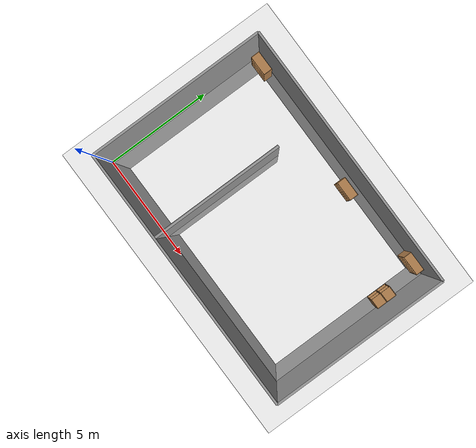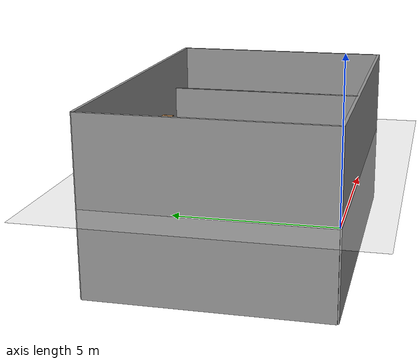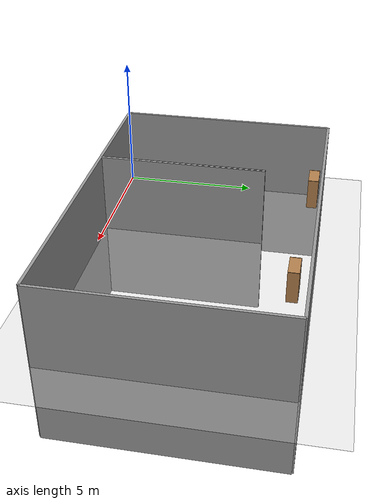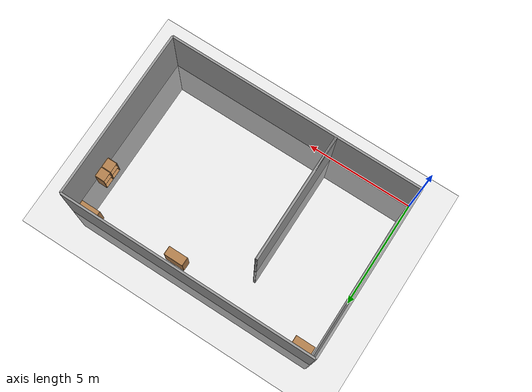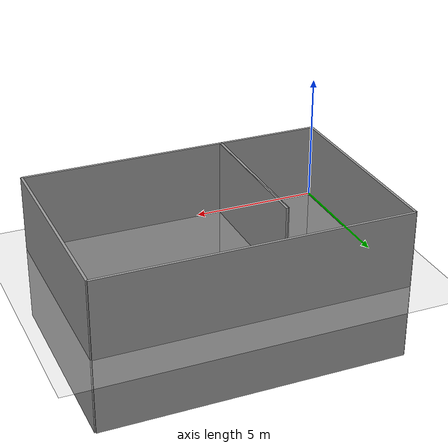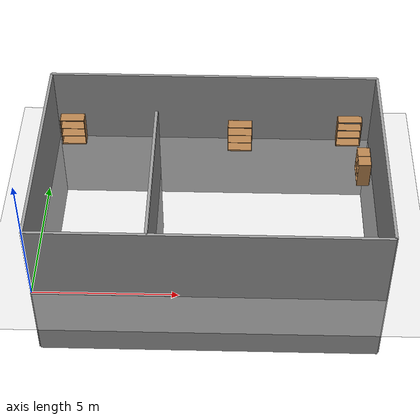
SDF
<sdf version="1.4">
 <world name="default">
  <light name="sun" type="directional">
   <pose>0 0 10 0 -0 0</pose>
   <diffuse>1 1 1 1</diffuse>
   <specular>0.2 0.2 0.2 1</specular>
   <attenuation>
    <range>1000</range>
    <constant>0.9</constant>
    <linear>0.01</linear>
    <quadratic>0.001</quadratic>
   </attenuation>
   <direction>0 0 -0.9</direction>
  </light>
  <model name="ground_plane">
   <static>1</static>
   <link name="link">
    <collision name="collision">
     <geometry><plane><normal>0 0 1</normal><size>100 100</size></plane></geometry>
     <surface><friction><ode><mu>100</mu><mu2>50</mu2></ode></friction></surface>
    </collision>
    <visual name="visual">
     <cast_shadows>0</cast_shadows>
     <geometry><plane><normal>0 0 1</normal><size>100 100</size></plane></geometry>
     <material>
      <script><uri>file://media/materials/scripts/gazebo.material</uri><name>Gazebo/Grey</name></script>
     </material>
    </visual>
    <velocity_decay><linear>0</linear><angular>0</angular></velocity_decay>
   </link>
  </model>
  <physics type="ode">
   <max_step_size>0.001</max_step_size>
   <real_time_factor>1</real_time_factor>
   <real_time_update_rate>1000</real_time_update_rate>
   <gravity>0 0 -9.8</gravity>
  </physics>
  <scene><ambient>0.8 0.8 0.8 1</ambient><background>0.7 0.7 0.7 1</background><shadows>1</shadows></scene>
  <spherical_coordinates>
   <surface_model>EARTH_WGS84</surface_model>
   <latitude_deg>0</latitude_deg>
   <longitude_deg>0</longitude_deg>
   <elevation>0</elevation>
   <heading_deg>0</heading_deg>
  </spherical_coordinates>
  <model name="grey_wall">
   <static>1</static>
   <link name="link">
    <pose>0 4 0 0 -0 1.5708</pose>
    <collision name="collision"><geometry><box><size>8 0.1 6</size></box></geometry></collision>
    <visual name="visual">
     <cast_shadows>0</cast_shadows>
     <geometry><box><size>8 0.1 6</size></box></geometry>
     <material>
      <script>
       <uri>model://grey_wall/materials/scripts</uri>
       <uri>model://grey_wall/materials/textures</uri>
       <name>vrc/grey_wall_design</name>
      </script>
     </material>
    </visual>
    <velocity_decay><linear>0</linear><angular>0</angular></velocity_decay>
   </link>
  </model>
  <model name="grey_wall_0">
   <static>1</static>
   <link name="link">
    <pose>12 4 0 0 -0 1.5708</pose>
    <collision name="collision"><geometry><box><size>8 0.1 6</size></box></geometry></collision>
    <visual name="visual">
     <cast_shadows>0</cast_shadows>
     <geometry><box><size>8 0.1 6</size></box></geometry>
     <material>
      <script>
       <uri>model://grey_wall/materials/scripts</uri>
       <uri>model://grey_wall/materials/textures</uri>
       <name>vrc/grey_wall_square</name>
      </script>
     </material>
    </visual>
    <velocity_decay><linear>0</linear><angular>0</angular></velocity_decay>
   </link>
  </model>
  <model name="grey_wall_1">
   <static>1</static>
   <link name="link">
    <pose>6 0 0 0 -0 0</pose>
    <collision name="collision"><geometry><box><size>12 0.1 6</size></box></geometry></collision>
    <visual name="visual">
     <cast_shadows>0</cast_shadows>
     <geometry><box><size>12 0.1 6</size></box></geometry>
     <material>
      <script>
       <uri>model://grey_wall/materials/scripts</uri>
       <uri>model://grey_wall/materials/textures</uri>
       <name>vrc/grey_wall_stone</name>
      </script>
     </material>
    </visual>
    <velocity_decay><linear>0</linear><angular>0</angular></velocity_decay>
   </link>
  </model>
  <model name="grey_wall_2">
   <static>1</static>
   <link name="link">
    <pose>6 8 0 0 -0 0</pose>
    <collision name="collision"><geometry><box><size>12 0.1 6</size></box></geometry></collision>
    <visual name="visual">
     <cast_shadows>0</cast_shadows>
     <geometry><box><size>12 0.1 6</size></box></geometry>
     <material>
      <script>
       <uri>model://grey_wall/materials/scripts</uri>
       <uri>model://grey_wall/materials/textures</uri>
       <name>vrc/grey_wall_triangle</name>
      </script>
     </material>
    </visual>
    <velocity_decay><linear>0</linear><angular>0</angular></velocity_decay>
   </link>
  </model>
  <model name="grey_wall_3">
   <static>1</static>
   <link name="link">
    <pose>4.01 3 0 0 -0 1.5708</pose>
    <collision name="collision"><geometry><box><size>6 0.1 6</size></box></geometry></collision>
    <visual name="visual">
     <cast_shadows>0</cast_shadows>
     <geometry><box><size>6 0.1 6</size></box></geometry>
     <material>
      <script>
       <uri>model://grey_wall/materials/scripts</uri>
       <uri>model://grey_wall/materials/textures</uri>
       <name>vrc/grey_wall_triangle</name>
      </script>
     </material>
    </visual>
    <velocity_decay><linear>0</linear><angular>0</angular></velocity_decay>
   </link>
  </model>
  <model name="grey_wall_4">
   <static>1</static>
   <link name="link">
    <pose>3.99 3 0 0 -0 1.5708</pose>
    <collision name="collision"><geometry><box><size>6 0.1 6</size></box></geometry></collision>
    <visual name="visual">
     <cast_shadows>0</cast_shadows>
     <geometry><box><size>6 0.1 6</size></box></geometry>
     <material>
      <script>
       <uri>model://grey_wall/materials/scripts</uri>
       <uri>model://grey_wall/materials/textures</uri>
       <name>vrc/grey_wall_tile</name>
      </script>
     </material>
    </visual>
    <velocity_decay><linear>0</linear><angular>0</angular></velocity_decay>
   </link>
  </model>
  <model name="bookshelf">
   <static>1</static>
   <link name="link">
    <inertial><mass>1</mass></inertial>
    <collision name="back">
     <pose>0 0.005 0.6 0 -0 0</pose>
     <geometry><box><size>0.9 0.01 1.2</size></box></geometry>
    </collision>
    <visual name="visual1">
     <pose>0 0.005 0.6 0 -0 0</pose>
     <geometry><box><size>0.9 0.01 1.2</size></box></geometry>
     <material>
      <script><uri>file://media/materials/scripts/gazebo.material</uri><name>Gazebo/Wood</name></script>
     </material>
    </visual>
    <collision name="left_side">
     <pose>0.45 -0.195 0.6 0 -0 0</pose>
     <geometry><box><size>0.02 0.4 1.2</size></box></geometry>
    </collision>
    <visual name="visual2">
     <pose>0.45 -0.195 0.6 0 -0 0</pose>
     <geometry><box><size>0.02 0.4 1.2</size></box></geometry>
     <material>
      <script><uri>file://media/materials/scripts/gazebo.material</uri><name>Gazebo/Wood</name></script>
     </material>
    </visual>
    <collision name="right_side">
     <pose>-0.45 -0.195 0.6 0 -0 0</pose>
     <geometry><box><size>0.02 0.4 1.2</size></box></geometry>
    </collision>
    <visual name="visual3">
     <pose>-0.45 -0.195 0.6 0 -0 0</pose>
     <geometry><box><size>0.02 0.4 1.2</size></box></geometry>
     <material>
      <script><uri>file://media/materials/scripts/gazebo.material</uri><name>Gazebo/Wood</name></script>
     </material>
    </visual>
    <collision name="bottom">
     <pose>0 -0.195 0.03 0 -0 0</pose>
     <geometry><box><size>0.88 0.4 0.06</size></box></geometry>
    </collision>
    <visual name="visual4">
     <pose>0 -0.195 0.03 0 -0 0</pose>
     <geometry><box><size>0.88 0.4 0.06</size></box></geometry>
     <material>
      <script><uri>file://media/materials/scripts/gazebo.material</uri><name>Gazebo/Wood</name></script>
     </material>
    </visual>
    <collision name="top">
     <pose>0 -0.195 1.19 0 -0 0</pose>
     <geometry><box><size>0.88 0.4 0.02</size></box></geometry>
    </collision>
    <visual name="visual5">
     <pose>0 -0.195 1.19 0 -0 0</pose>
     <geometry><box><size>0.88 0.4 0.02</size></box></geometry>
     <material>
      <script><uri>file://media/materials/scripts/gazebo.material</uri><name>Gazebo/Wood</name></script>
     </material>
    </visual>
    <collision name="low_shelf">
     <pose>0 -0.195 0.43 0 -0 0</pose>
     <geometry><box><size>0.88 0.4 0.02</size></box></geometry>
    </collision>
    <visual name="visual6">
     <pose>0 -0.195 0.43 0 -0 0</pose>
     <geometry><box><size>0.88 0.4 0.02</size></box></geometry>
     <material>
      <script><uri>file://media/materials/scripts/gazebo.material</uri><name>Gazebo/Wood</name></script>
     </material>
    </visual>
    <collision name="high_shelf">
     <pose>0 -0.195 0.8 0 -0 0</pose>
     <geometry><box><size>0.88 0.4 0.02</size></box></geometry>
    </collision>
    <visual name="visual7">
     <pose>0 -0.195 0.8 0 -0 0</pose>
     <geometry><box><size>0.88 0.4 0.02</size></box></geometry>
     <material>
      <script><uri>file://media/materials/scripts/gazebo.material</uri><name>Gazebo/Wood</name></script>
     </material>
    </visual>
    <velocity_decay><linear>0</linear><angular>0</angular></velocity_decay>
   </link>
   <pose>0.651167 7.83521 0 0 -0 0</pose>
  </model>
  <model name="bookshelf_0">
   <static>1</static>
   <link name="link">
    <inertial><mass>1</mass></inertial>
    <collision name="back">
     <pose>0 0.005 0.6 0 -0 0</pose>
     <geometry><box><size>0.9 0.01 1.2</size></box></geometry>
    </collision>
    <visual name="visual1">
     <pose>0 0.005 0.6 0 -0 0</pose>
     <geometry><box><size>0.9 0.01 1.2</size></box></geometry>
     <material>
      <script><uri>file://media/materials/scripts/gazebo.material</uri><name>Gazebo/Wood</name></script>
     </material>
    </visual>
    <collision name="left_side">
     <pose>0.45 -0.195 0.6 0 -0 0</pose>
     <geometry><box><size>0.02 0.4 1.2</size></box></geometry>
    </collision>
    <visual name="visual2">
     <pose>0.45 -0.195 0.6 0 -0 0</pose>
     <geometry><box><size>0.02 0.4 1.2</size></box></geometry>
     <material>
      <script><uri>file://media/materials/scripts/gazebo.material</uri><name>Gazebo/Wood</name></script>
     </material>
    </visual>
    <collision name="right_side">
     <pose>-0.45 -0.195 0.6 0 -0 0</pose>
     <geometry><box><size>0.02 0.4 1.2</size></box></geometry>
    </collision>
    <visual name="visual3">
     <pose>-0.45 -0.195 0.6 0 -0 0</pose>
     <geometry><box><size>0.02 0.4 1.2</size></box></geometry>
     <material>
      <script><uri>file://media/materials/scripts/gazebo.material</uri><name>Gazebo/Wood</name></script>
     </material>
    </visual>
    <collision name="bottom">
     <pose>0 -0.195 0.03 0 -0 0</pose>
     <geometry><box><size>0.88 0.4 0.06</size></box></geometry>
    </collision>
    <visual name="visual4">
     <pose>0 -0.195 0.03 0 -0 0</pose>
     <geometry><box><size>0.88 0.4 0.06</size></box></geometry>
     <material>
      <script><uri>file://media/materials/scripts/gazebo.material</uri><name>Gazebo/Wood</name></script>
     </material>
    </visual>
    <collision name="top">
     <pose>0 -0.195 1.19 0 -0 0</pose>
     <geometry><box><size>0.88 0.4 0.02</size></box></geometry>
    </collision>
    <visual name="visual5">
     <pose>0 -0.195 1.19 0 -0 0</pose>
     <geometry><box><size>0.88 0.4 0.02</size></box></geometry>
     <material>
      <script><uri>file://media/materials/scripts/gazebo.material</uri><name>Gazebo/Wood</name></script>
     </material>
    </visual>
    <collision name="low_shelf">
     <pose>0 -0.195 0.43 0 -0 0</pose>
     <geometry><box><size>0.88 0.4 0.02</size></box></geometry>
    </collision>
    <visual name="visual6">
     <pose>0 -0.195 0.43 0 -0 0</pose>
     <geometry><box><size>0.88 0.4 0.02</size></box></geometry>
     <material>
      <script><uri>file://media/materials/scripts/gazebo.material</uri><name>Gazebo/Wood</name></script>
     </material>
    </visual>
    <collision name="high_shelf">
     <pose>0 -0.195 0.8 0 -0 0</pose>
     <geometry><box><size>0.88 0.4 0.02</size></box></geometry>
    </collision>
    <visual name="visual7">
     <pose>0 -0.195 0.8 0 -0 0</pose>
     <geometry><box><size>0.88 0.4 0.02</size></box></geometry>
     <material>
      <script><uri>file://media/materials/scripts/gazebo.material</uri><name>Gazebo/Wood</name></script>
     </material>
    </visual>
    <velocity_decay><linear>0</linear><angular>0</angular></velocity_decay>
   </link>
   <pose>11.1462 7.97499 0 0 -0 0</pose>
  </model>
  <model name="cabinet">
   <static>1</static>
   <link name="cabinet_bottom_plate">
    <inertial>
     <pose>0 0 -1 0 -0 0</pose>
     <inertia><ixx>2.05</ixx><ixy>0</ixy><ixz>0</ixz><iyy>2.05</iyy><iyz>0</iyz><izz>2.05</izz></inertia>
     <mass>25</mass>
    </inertial>
    <collision name="cabinet_bottom_plate_geom">
     <pose>0 0 0.01 0 -0 0</pose>
     <geometry><box><size>0.45 0.45 0.02</size></box></geometry>
    </collision>
    <visual name="cabinet_bottom_plate_geom_visual">
     <pose>0 0 0.01 0 -0 0</pose>
     <geometry><box><size>0.45 0.45 0.02</size></box></geometry>
     <material>
      <script><uri>file://media/materials/scripts/gazebo.material</uri><name>Gazebo/Wood</name></script>
     </material>
    </visual>
    <collision name="cabinet_bottom_plate_geom_cabinet_back_plate">
     <pose>0.235 0 0.51 0 -0 0</pose>
     <geometry><box><size>0.02 0.45 1.02</size></box></geometry>
    </collision>
    <visual name="cabinet_bottom_plate_geom_cabinet_back_plate_visual">
     <pose>0.235 0 0.51 0 -0 0</pose>
     <geometry><box><size>0.02 0.45 1.02</size></box></geometry>
     <material>
      <script><uri>file://media/materials/scripts/gazebo.material</uri><name>Gazebo/Wood</name></script>
     </material>
    </visual>
    <collision name="cabinet_bottom_plate_geom_cabinet_left_plate">
     <pose>0 0.235 0.51 0 -0 0</pose>
     <geometry><box><size>0.45 0.02 1.02</size></box></geometry>
    </collision>
    <visual name="cabinet_bottom_plate_geom_cabinet_left_plate_visual">
     <pose>0 0.235 0.51 0 -0 0</pose>
     <geometry><box><size>0.45 0.02 1.02</size></box></geometry>
     <material>
      <script><uri>file://media/materials/scripts/gazebo.material</uri><name>Gazebo/Wood</name></script>
     </material>
    </visual>
    <collision name="cabinet_bottom_plate_geom_cabinet_middle_plate">
     <pose>0 0 0.51 0 -0 0</pose>
     <geometry><box><size>0.45 0.45 0.02</size></box></geometry>
    </collision>
    <visual name="cabinet_bottom_plate_geom_cabinet_middle_plate_visual">
     <pose>0 0 0.51 0 -0 0</pose>
     <geometry><box><size>0.45 0.45 0.02</size></box></geometry>
     <material>
      <script><uri>file://media/materials/scripts/gazebo.material</uri><name>Gazebo/Wood</name></script>
     </material>
    </visual>
    <collision name="cabinet_bottom_plate_geom_cabinet_right_plate">
     <pose>0 -0.235 0.51 0 -0 0</pose>
     <geometry><box><size>0.45 0.02 1.02</size></box></geometry>
    </collision>
    <visual name="cabinet_bottom_plate_geom_cabinet_right_plate_visual">
     <pose>0 -0.235 0.51 0 -0 0</pose>
     <geometry><box><size>0.45 0.02 1.02</size></box></geometry>
     <material>
      <script><uri>file://media/materials/scripts/gazebo.material</uri><name>Gazebo/Wood</name></script>
     </material>
    </visual>
    <collision name="cabinet_bottom_plate_geom_cabinet_top_plate">
     <pose>0 0 1.01 0 -0 0</pose>
     <geometry><box><size>0.45 0.45 0.02</size></box></geometry>
    </collision>
    <visual name="cabinet_bottom_plate_geom_cabinet_top_plate_visual">
     <pose>0 0 1.01 0 -0 0</pose>
     <geometry><box><size>0.45 0.45 0.02</size></box></geometry>
     <material>
      <script><uri>file://media/materials/scripts/gazebo.material</uri><name>Gazebo/Wood</name></script>
     </material>
    </visual>
    <velocity_decay><linear>0</linear><angular>0</angular></velocity_decay>
   </link>
   <pose>11.5733 6.16687 0 0 -0 0</pose>
  </model>
  <model name="cabinet_0">
   <static>1</static>
   <link name="cabinet_bottom_plate">
    <inertial>
     <pose>0 0 -1 0 -0 0</pose>
     <inertia><ixx>2.05</ixx><ixy>0</ixy><ixz>0</ixz><iyy>2.05</iyy><iyz>0</iyz><izz>2.05</izz></inertia>
     <mass>25</mass>
    </inertial>
    <collision name="cabinet_bottom_plate_geom">
     <pose>0 0 0.01 0 -0 0</pose>
     <geometry><box><size>0.45 0.45 0.02</size></box></geometry>
    </collision>
    <visual name="cabinet_bottom_plate_geom_visual">
     <pose>0 0 0.01 0 -0 0</pose>
     <geometry><box><size>0.45 0.45 0.02</size></box></geometry>
     <material>
      <script><uri>file://media/materials/scripts/gazebo.material</uri><name>Gazebo/Wood</name></script>
     </material>
    </visual>
    <collision name="cabinet_bottom_plate_geom_cabinet_back_plate">
     <pose>0.235 0 0.51 0 -0 0</pose>
     <geometry><box><size>0.02 0.45 1.02</size></box></geometry>
    </collision>
    <visual name="cabinet_bottom_plate_geom_cabinet_back_plate_visual">
     <pose>0.235 0 0.51 0 -0 0</pose>
     <geometry><box><size>0.02 0.45 1.02</size></box></geometry>
     <material>
      <script><uri>file://media/materials/scripts/gazebo.material</uri><name>Gazebo/Wood</name></script>
     </material>
    </visual>
    <collision name="cabinet_bottom_plate_geom_cabinet_left_plate">
     <pose>0 0.235 0.51 0 -0 0</pose>
     <geometry><box><size>0.45 0.02 1.02</size></box></geometry>
    </collision>
    <visual name="cabinet_bottom_plate_geom_cabinet_left_plate_visual">
     <pose>0 0.235 0.51 0 -0 0</pose>
     <geometry><box><size>0.45 0.02 1.02</size></box></geometry>
     <material>
      <script><uri>file://media/materials/scripts/gazebo.material</uri><name>Gazebo/Wood</name></script>
     </material>
    </visual>
    <collision name="cabinet_bottom_plate_geom_cabinet_middle_plate">
     <pose>0 0 0.51 0 -0 0</pose>
     <geometry><box><size>0.45 0.45 0.02</size></box></geometry>
    </collision>
    <visual name="cabinet_bottom_plate_geom_cabinet_middle_plate_visual">
     <pose>0 0 0.51 0 -0 0</pose>
     <geometry><box><size>0.45 0.45 0.02</size></box></geometry>
     <material>
      <script><uri>file://media/materials/scripts/gazebo.material</uri><name>Gazebo/Wood</name></script>
     </material>
    </visual>
    <collision name="cabinet_bottom_plate_geom_cabinet_right_plate">
     <pose>0 -0.235 0.51 0 -0 0</pose>
     <geometry><box><size>0.45 0.02 1.02</size></box></geometry>
    </collision>
    <visual name="cabinet_bottom_plate_geom_cabinet_right_plate_visual">
     <pose>0 -0.235 0.51 0 -0 0</pose>
     <geometry><box><size>0.45 0.02 1.02</size></box></geometry>
     <material>
      <script><uri>file://media/materials/scripts/gazebo.material</uri><name>Gazebo/Wood</name></script>
     </material>
    </visual>
    <collision name="cabinet_bottom_plate_geom_cabinet_top_plate">
     <pose>0 0 1.01 0 -0 0</pose>
     <geometry><box><size>0.45 0.45 0.02</size></box></geometry>
    </collision>
    <visual name="cabinet_bottom_plate_geom_cabinet_top_plate_visual">
     <pose>0 0 1.01 0 -0 0</pose>
     <geometry><box><size>0.45 0.45 0.02</size></box></geometry>
     <material>
      <script><uri>file://media/materials/scripts/gazebo.material</uri><name>Gazebo/Wood</name></script>
     </material>
    </visual>
    <velocity_decay><linear>0</linear><angular>0</angular></velocity_decay>
   </link>
   <pose>11.5724 5.68225 0 0 -0 0</pose>
  </model>
  <model name="bookshelf_1">
   <static>0</static>
   <link name="link">
    <inertial><mass>1</mass></inertial>
    <collision name="back">
     <pose>0 0.005 0.6 0 -0 0</pose>
     <geometry><box><size>0.9 0.01 1.2</size></box></geometry>
    </collision>
    <visual name="visual1">
     <pose>0 0.005 0.6 0 -0 0</pose>
     <geometry><box><size>0.9 0.01 1.2</size></box></geometry>
     <material>
      <script><uri>file://media/materials/scripts/gazebo.material</uri><name>Gazebo/Wood</name></script>
     </material>
    </visual>
    <collision name="left_side">
     <pose>0.45 -0.195 0.6 0 -0 0</pose>
     <geometry><box><size>0.02 0.4 1.2</size></box></geometry>
    </collision>
    <visual name="visual2">
     <pose>0.45 -0.195 0.6 0 -0 0</pose>
     <geometry><box><size>0.02 0.4 1.2</size></box></geometry>
     <material>
      <script><uri>file://media/materials/scripts/gazebo.material</uri><name>Gazebo/Wood</name></script>
     </material>
    </visual>
    <collision name="right_side">
     <pose>-0.45 -0.195 0.6 0 -0 0</pose>
     <geometry><box><size>0.02 0.4 1.2</size></box></geometry>
    </collision>
    <visual name="visual3">
     <pose>-0.45 -0.195 0.6 0 -0 0</pose>
     <geometry><box><size>0.02 0.4 1.2</size></box></geometry>
     <material>
      <script><uri>file://media/materials/scripts/gazebo.material</uri><name>Gazebo/Wood</name></script>
     </material>
    </visual>
    <collision name="bottom">
     <pose>0 -0.195 0.03 0 -0 0</pose>
     <geometry><box><size>0.88 0.4 0.06</size></box></geometry>
    </collision>
    <visual name="visual4">
     <pose>0 -0.195 0.03 0 -0 0</pose>
     <geometry><box><size>0.88 0.4 0.06</size></box></geometry>
     <material>
      <script><uri>file://media/materials/scripts/gazebo.material</uri><name>Gazebo/Wood</name></script>
     </material>
    </visual>
    <collision name="top">
     <pose>0 -0.195 1.19 0 -0 0</pose>
     <geometry><box><size>0.88 0.4 0.02</size></box></geometry>
    </collision>
    <visual name="visual5">
     <pose>0 -0.195 1.19 0 -0 0</pose>
     <geometry><box><size>0.88 0.4 0.02</size></box></geometry>
     <material>
      <script><uri>file://media/materials/scripts/gazebo.material</uri><name>Gazebo/Wood</name></script>
     </material>
    </visual>
    <collision name="low_shelf">
     <pose>0 -0.195 0.43 0 -0 0</pose>
     <geometry><box><size>0.88 0.4 0.02</size></box></geometry>
    </collision>
    <visual name="visual6">
     <pose>0 -0.195 0.43 0 -0 0</pose>
     <geometry><box><size>0.88 0.4 0.02</size></box></geometry>
     <material>
      <script><uri>file://media/materials/scripts/gazebo.material</uri><name>Gazebo/Wood</name></script>
     </material>
    </visual>
    <collision name="high_shelf">
     <pose>0 -0.195 0.8 0 -0 0</pose>
     <geometry><box><size>0.88 0.4 0.02</size></box></geometry>
    </collision>
    <visual name="visual7">
     <pose>0 -0.195 0.8 0 -0 0</pose>
     <geometry><box><size>0.88 0.4 0.02</size></box></geometry>
     <material>
      <script><uri>file://media/materials/scripts/gazebo.material</uri><name>Gazebo/Wood</name></script>
     </material>
    </visual>
    <velocity_decay><linear>0</linear><angular>0</angular></velocity_decay>
   </link>
   <pose>7 7.6 0 0 -0 0</pose>
  </model>
 </world>
</sdf>
